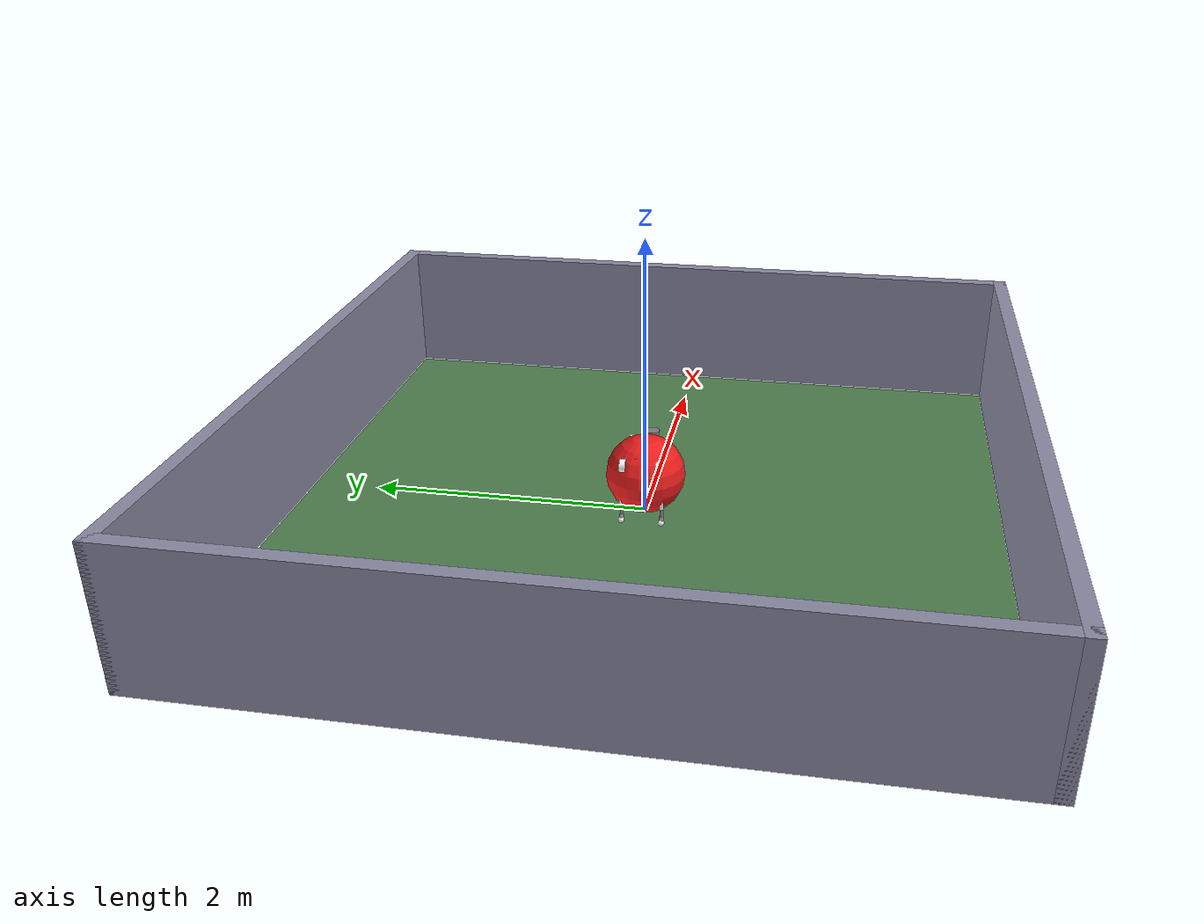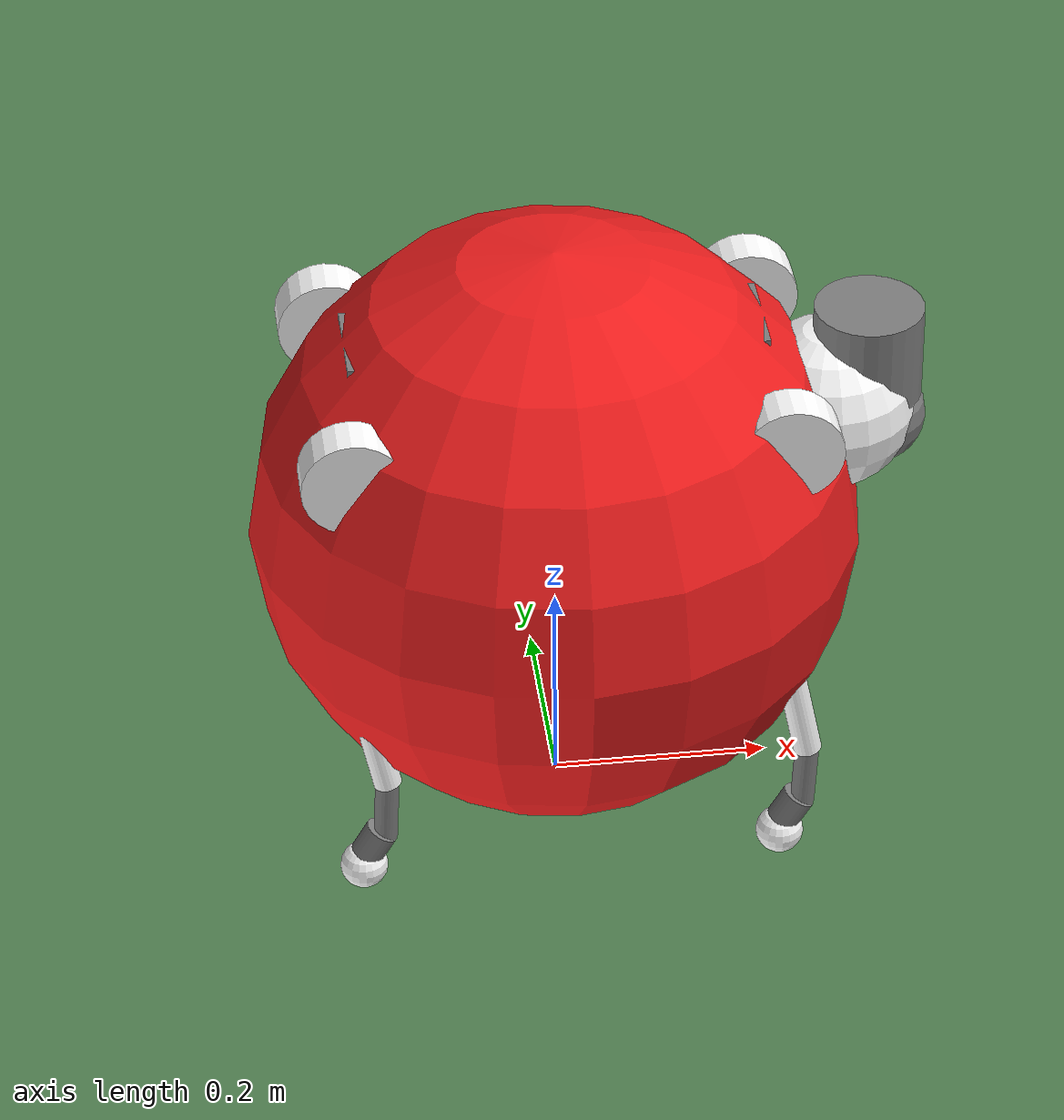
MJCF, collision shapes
<mujoco model="go2_arena">
  <include file="go2.xml"/>

  <statistic center="0 0 0.3" extent="4"/>

  <visual>
    <headlight diffuse="0.6 0.6 0.6" ambient="0.3 0.3 0.3" specular="0 0 0"/>
    <rgba haze="0.1 0.15 0.2 1"/>
    <global azimuth="120" elevation="-30"/>
  </visual>

  <asset>
    <texture type="2d" name="floor_tex" builtin="checker"
      rgb1="0.35 0.55 0.35" rgb2="0.28 0.45 0.28" width="256" height="256"/>
    <material name="floor_mat" texture="floor_tex" texrepeat="5 5" reflectance="0.1"/>
    <material name="wall_mat" rgba="0.55 0.55 0.65 1"/>
    <material name="oni_mat"  rgba="0.95 0.12 0.12 1"/>
  </asset>

  <worldbody>
    <light name="main_light" pos="0 0 5" dir="0 0 -1" directional="true"
      diffuse="0.8 0.8 0.8" specular="0.1 0.1 0.1"/>
    <light name="fill_light" pos="0 0 3" dir="0 1 -1" directional="true"
      diffuse="0.3 0.3 0.35" specular="0 0 0"/>

    <!-- 5m×5m フロア（±2.5m） -->
    <geom name="floor" type="plane" size="2.5 2.5 0.1" material="floor_mat"
      contype="1" conaffinity="1" friction="0.8 0.1 0.1"/>

    <!-- 壁（厚み 0.1m、高さ 1.0m） -->
    <!-- 北壁 y=+2.5 -->
    <geom name="wall_n" type="box" pos="0  2.55 0.5" size="2.6 0.05 0.5"
      material="wall_mat" contype="1" conaffinity="1"/>
    <!-- 南壁 y=-2.5 -->
    <geom name="wall_s" type="box" pos="0 -2.55 0.5" size="2.6 0.05 0.5"
      material="wall_mat" contype="1" conaffinity="1"/>
    <!-- 東壁 x=+2.5 -->
    <geom name="wall_e" type="box" pos=" 2.55 0 0.5" size="0.05 2.6 0.5"
      material="wall_mat" contype="1" conaffinity="1"/>
    <!-- 西壁 x=-2.5 -->
    <geom name="wall_w" type="box" pos="-2.55 0 0.5" size="0.05 2.6 0.5"
      material="wall_mat" contype="1" conaffinity="1"/>

    <!-- 俯瞰カメラ（2体が収まる高さ: 9m） -->
    <camera name="top_view" pos="0 0 9" euler="0 0 0" fovy="60"/>

    <!-- 斜めカメラ（確認用） -->
    <camera name="side_view" pos="6 -4 4" euler="55 0 45" fovy="50"/>

    <!-- 鬼（赤い球）: pos=(0,0,0.3) を原点に slide 関節で移動
         qpos[19]=oni_x, qpos[20]=oni_y で位置管理 -->
    <body name="oni" pos="0 0 0.3">
      <joint name="oni_x" type="slide" axis="1 0 0"
        limited="true" range="-2.4 2.4" damping="100" frictionloss="0"/>
      <joint name="oni_y" type="slide" axis="0 1 0"
        limited="true" range="-2.4 2.4" damping="100" frictionloss="0"/>
      <!-- 視覚的な球（衝突なし: contype=0） -->
      <geom name="oni_body" type="sphere" size="0.28" material="oni_mat"
        contype="0" conaffinity="0" mass="0.001"/>
      <!-- 鬼の方向インジケーター（目のような突起） -->
      <geom name="oni_eye" type="sphere" size="0.08" pos="0.25 0 0.1"
        rgba="1 1 1 1" contype="0" conaffinity="0" mass="0"/>
    </body>
  </worldbody>
</mujoco>

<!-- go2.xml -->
<mujoco model="go2_description">

  <compiler angle="radian" meshdir="assets"/>

  <statistic meansize="0.144785" extent="1.23314" center="0.025392 2.0634e-05 -0.245975"/>
  <default>
    <joint damping="0.001" armature="0.01" frictionloss="0.1"/>
    <default class="visual">
        <geom type="mesh" contype="0" conaffinity="0" group="2"/>
    </default>
  </default>

  <asset>
    <material name="metal" rgba=".9 .95 .95 1" />
    <material name="black" rgba="0 0 0 1" />
    <material name="white" rgba="1 1 1 1" />
    <material name="gray" rgba="0.671705 0.692426 0.774270 1" />

    <mesh file="base_0.obj" />
    <mesh file="base_1.obj" />
    <mesh file="base_2.obj" />
    <mesh file="base_3.obj" />
    <mesh file="base_4.obj" />
    <mesh file="hip_0.obj" />
    <mesh file="hip_1.obj" />
    <mesh file="thigh_0.obj" />
    <mesh file="thigh_1.obj" />
    <mesh file="thigh_mirror_0.obj" />
    <mesh file="thigh_mirror_1.obj" />
    <mesh file="calf_0.obj" />
    <mesh file="calf_1.obj" />
    <mesh file="calf_mirror_0.obj" />
    <mesh file="calf_mirror_1.obj" />
    <mesh file="foot.obj" />
  </asset>

  <worldbody>

    <body name="base" pos="0 0 0.445">
      <inertial pos="0.021112 0 -0.005366"
                mass="6.921"
                diaginertia="0.02448 0.098077 0.107" />
      <freejoint name="root"/>
      <geom mesh="base_0" material="black" class="visual" />
      <geom mesh="base_1" material="black" class="visual" />
      <geom mesh="base_2" material="black" class="visual" />
      <geom mesh="base_3" material="white" class="visual" />
      <geom mesh="base_4" material="gray" class="visual" />

      <geom name="base_box"      type="box"      size="0.1881 0.04675 0.057"/>
      <geom name="base_cyl1"     type="cylinder" size="0.05 0.045"   pos="0.285 0 0.01"/>
      <geom name="base_sphere1"  type="sphere"   size="0.047"        pos="0.293 0 -0.06"/>

      <body name="FL_hip" pos="0.1934 0.0465 0">
        <inertial pos="-0.0054 0.00194 -0.000105" quat="0.497014 0.499245 0.505462 0.498237" mass="0.678" diaginertia="0.00088403 0.000596003 0.000479967"/>
        <joint name="FL_hip_joint" pos="0 0 0" axis="1 0 0" range="-1.0472 1.0472" actuatorfrcrange="-23.7 23.7"/>
        <geom mesh="hip_0" material="metal" class="visual" />
        <geom mesh="hip_1" material="gray" class="visual" />
        <geom size="0.046 0.02" pos="0 0.08 0" quat="0.707107 0.707107 0 0" type="cylinder" rgba="1 1 1 1"/>

        <body name="FL_thigh" pos="0 0.0955 0">
        <inertial pos="-0.00374 -0.0223 -0.0327" quat="0.829533 0.0847635 -0.0200632 0.551623" mass="1.152" diaginertia="0.00594973 0.00584149 0.000878787"/>
        <joint name="FL_thigh_joint" pos="0 0 0" axis="0 1 0" range="-1.5708 3.4907" actuatorfrcrange="-23.7 23.7"/>
        <geom mesh="thigh_0" material="metal" class="visual" />
        <geom mesh="thigh_1" material="gray" class="visual" />
        <geom size="0.055 0.01225 0.017" pos="0 0 -0.1065" quat="0.707107 0 0.707107 0" type="box" rgba="1 1 1 1"/>
        <body name="FL_calf" pos="0 0 -0.213">
        <inertial pos="0.00629595 -0.000622121 -0.141417" quat="0.710672 0.00154099 -0.00450087 0.703508" mass="0.241352" diaginertia="0.0014901 0.00146356 5.31397e-05"/>
        <joint name="FL_calf_joint" pos="0 0 0" axis="0 1 0" range="-2.7227 -0.83776" actuatorfrcrange="-35.55 35.55"/>
        <geom mesh="calf_0" material="gray" class="visual" />
        <geom mesh="calf_1" material="black" class="visual" />
        <geom size="0.012 0.06" pos="0.008 0 -0.06" quat="0.994493 0 -0.104807 0" type="cylinder" rgba="1 1 1 1"/>
        <geom size="0.011 0.0325" pos="0.02 0 -0.148" quat="0.999688 0 0.0249974 0" type="cylinder"/>
        <geom size="0.0155 0.015" pos="0.00801333 0 -0.18745" quat="0.965093 0 0.261909 0" type="cylinder"/>
        <geom pos="0 0 -0.213" mesh="foot" class="visual" material="black" />
        <geom name="FL_foot" size="0.022" pos="-0.002 0 -0.213" rgba="1 1 1 1" priority="1" condim="6" friction="0.9 0.02 0.01"/>
        </body>
        </body>
      </body>
      <body name="FR_hip" pos="0.1934 -0.0465 0">
        <inertial pos="-0.0054 -0.00194 -0.000105" quat="0.498237 0.505462 0.499245 0.497014" mass="0.678" diaginertia="0.00088403 0.000596003 0.000479967"/>
        <joint name="FR_hip_joint" pos="0 0 0" axis="1 0 0" range="-1.0472 1.0472" actuatorfrcrange="-23.7 23.7"/>
        <geom mesh="hip_0" material="metal" class="visual" quat="4.63268e-05 1 0 0" />
        <geom mesh="hip_1" material="gray" class="visual" quat="4.63268e-05 1 0 0" />
        <geom size="0.046 0.02" pos="0 -0.08 0" quat="0.707107 0.707107 0 0" type="cylinder" rgba="1 1 1 1"/>
        <body name="FR_thigh" pos="0 -0.0955 0">
        <inertial pos="-0.00374 0.0223 -0.0327" quat="0.551623 -0.0200632 0.0847635 0.829533" mass="1.152" diaginertia="0.00594973 0.00584149 0.000878787"/>
        <joint name="FR_thigh_joint" pos="0 0 0" axis="0 1 0" range="-1.5708 3.4907" actuatorfrcrange="-23.7 23.7"/>
        <geom mesh="thigh_mirror_0" material="metal" class="visual" />
        <geom mesh="thigh_mirror_1" material="gray" class="visual" />
        <geom size="0.055 0.01225 0.017" pos="0 0 -0.1065" quat="0.707107 0 0.707107 0" type="box" rgba="1 1 1 1"/>
        <body name="FR_calf" pos="0 0 -0.213">
        <inertial pos="0.00629595 0.000622121 -0.141417" quat="0.703508 -0.00450087 0.00154099 0.710672" mass="0.241352" diaginertia="0.0014901 0.00146356 5.31397e-05"/>
        <joint name="FR_calf_joint" pos="0 0 0" axis="0 1 0" range="-2.7227 -0.83776" actuatorfrcrange="-35.55 35.55"/>
        <geom mesh="calf_mirror_0" material="gray" class="visual" />
        <geom mesh="calf_mirror_1" material="black" class="visual" />
        <geom size="0.013 0.06" pos="0.01 0 -0.06" quat="0.995004 0 -0.0998334 0" type="cylinder" rgba="1 1 1 1"/>
        <geom size="0.011 0.0325" pos="0.02 0 -0.148" quat="0.999688 0 0.0249974 0" type="cylinder"/>
        <geom size="0.0155 0.015" pos="0.00801333 0 -0.18745" quat="0.965093 0 0.261909 0" type="cylinder"/>
        <geom pos="0 0 -0.213" mesh="foot" class="visual" material="black" />
        <geom name="FR_foot" size="0.022" pos="-0.002 0 -0.213" rgba="1 1 1 1" priority="1" condim="6" friction="0.9 0.02 0.01"/>
        </body>
        </body>
      </body>
      <body name="RL_hip" pos="-0.1934 0.0465 0">
        <inertial pos="0.0054 0.00194 -0.000105" quat="0.505462 0.498237 0.497014 0.499245" mass="0.678" diaginertia="0.00088403 0.000596003 0.000479967"/>
        <joint name="RL_hip_joint" pos="0 0 0" axis="1 0 0" range="-1.0472 1.0472" actuatorfrcrange="-23.7 23.7"/>
        <geom mesh="hip_0" material="metal" class="visual" quat="4.63268e-05 0 1 0" />
        <geom mesh="hip_1" material="gray" class="visual" quat="4.63268e-05 0 1 0" />
        <geom size="0.046 0.02" pos="0 0.08 0" quat="0.707107 0.707107 0 0" type="cylinder" rgba="1 1 1 1"/>
        <body name="RL_thigh" pos="0 0.0955 0">
        <inertial pos="-0.00374 -0.0223 -0.0327" quat="0.829533 0.0847635 -0.0200632 0.551623" mass="1.152" diaginertia="0.00594973 0.00584149 0.000878787"/>
        <joint name="RL_thigh_joint" pos="0 0 0" axis="0 1 0" range="-0.5236 4.5379" actuatorfrcrange="-23.7 23.7"/>
        <geom mesh="thigh_0" material="metal" class="visual" />
        <geom mesh="thigh_1" material="gray" class="visual" />
        <geom size="0.055 0.01225 0.017" pos="0 0 -0.1065" quat="0.707107 0 0.707107 0" type="box" rgba="1 1 1 1"/>
        <body name="RL_calf" pos="0 0 -0.213">
        <inertial pos="0.00629595 -0.000622121 -0.141417" quat="0.710672 0.00154099 -0.00450087 0.703508" mass="0.241352" diaginertia="0.0014901 0.00146356 5.31397e-05"/>
        <joint name="RL_calf_joint" pos="0 0 0" axis="0 1 0" range="-2.7227 -0.83776" actuatorfrcrange="-35.55 35.55"/>
        <geom mesh="calf_0" material="gray" class="visual" />
        <geom mesh="calf_1" material="black" class="visual" />
        <geom size="0.013 0.06" pos="0.01 0 -0.06" quat="0.995004 0 -0.0998334 0" type="cylinder" rgba="1 1 1 1"/>
        <geom size="0.011 0.0325" pos="0.02 0 -0.148" quat="0.999688 0 0.0249974 0" type="cylinder"/>
        <geom size="0.0155 0.015" pos="0.00801333 0 -0.18745" quat="0.965093 0 0.261909 0" type="cylinder"/>
        <geom pos="0 0 -0.213" mesh="foot" class="visual" material="black" />
        <geom name="RL_foot" size="0.022" pos="-0.002 0 -0.213" rgba="1 1 1 1" priority="1" condim="6" friction="0.9 0.02 0.01"/>
        </body>
        </body>
      </body>

      <body name="RR_hip" pos="-0.1934 -0.0465 0">
        <inertial pos="0.0054 -0.00194 -0.000105" quat="0.499245 0.497014 0.498237 0.505462" mass="0.678" diaginertia="0.00088403 0.000596003 0.000479967"/>
        <joint name="RR_hip_joint" pos="0 0 0" axis="1 0 0" range="-1.0472 1.0472" actuatorfrcrange="-23.7 23.7"/>
        <geom mesh="hip_0" material="metal" class="visual"
          quat="2.14617e-09 4.63268e-05 4.63268e-05 -1" />
        <geom mesh="hip_1" material="gray" class="visual"
          quat="2.14617e-09 4.63268e-05 4.63268e-05 -1" />
        <geom size="0.046 0.02" pos="0 -0.08 0" quat="0.707107 0.707107 0 0" type="cylinder" rgba="1 1 1 1"/>
        <body name="RR_thigh" pos="0 -0.0955 0">
        <inertial pos="-0.00374 0.0223 -0.0327" quat="0.551623 -0.0200632 0.0847635 0.829533" mass="1.152" diaginertia="0.00594973 0.00584149 0.000878787"/>
        <joint name="RR_thigh_joint" pos="0 0 0" axis="0 1 0" range="-0.5236 4.5379" actuatorfrcrange="-23.7 23.7"/>
        <geom mesh="thigh_mirror_0" material="metal" class="visual" />
        <geom mesh="thigh_mirror_1" material="gray" class="visual" />
        <geom size="0.055 0.01225 0.017" pos="0 0 -0.1065" quat="0.707107 0 0.707107 0" type="box" rgba="1 1 1 1"/>
        <body name="RR_calf" pos="0 0 -0.213">
        <inertial pos="0.00629595 0.000622121 -0.141417" quat="0.703508 -0.00450087 0.00154099 0.710672" mass="0.241352" diaginertia="0.0014901 0.00146356 5.31397e-05"/>
        <joint name="RR_calf_joint" pos="0 0 0" axis="0 1 0" range="-2.7227 -0.83776" actuatorfrcrange="-35.55 35.55"/>
        <geom mesh="calf_mirror_0" material="gray" class="visual" />
        <geom mesh="calf_mirror_1" material="black" class="visual" />
        <geom size="0.013 0.06" pos="0.01 0 -0.06" quat="0.995004 0 -0.0998334 0" type="cylinder" rgba="1 1 1 1"/>
        <geom size="0.011 0.0325" pos="0.02 0 -0.148" quat="0.999688 0 0.0249974 0" type="cylinder"/>
        <geom size="0.0155 0.015" pos="0.00801333 0 -0.18745" quat="0.965093 0 0.261909 0" type="cylinder"/>
        <geom pos="0 0 -0.213" mesh="foot" class="visual" material="black" />
        <geom name="RR_foot" size="0.022" pos="-0.002 0 -0.213" rgba="1 1 1 1" priority="1" condim="6" friction="0.9 0.02 0.01"/>
        </body>
        </body>
      </body>

    </body>
  </worldbody>

  <actuator>
    <motor name="FL_hip"   joint="FL_hip_joint"/>
    <motor name="FL_thigh" joint="FL_thigh_joint"/>
    <motor name="FL_calf"  joint="FL_calf_joint"/>
    <motor name="FR_hip"   joint="FR_hip_joint"/>
    <motor name="FR_thigh" joint="FR_thigh_joint"/>
    <motor name="FR_calf"  joint="FR_calf_joint"/>
    <motor name="RL_hip"   joint="RL_hip_joint"/>
    <motor name="RL_thigh" joint="RL_thigh_joint"/>
    <motor name="RL_calf"  joint="RL_calf_joint"/>
    <motor name="RR_hip"   joint="RR_hip_joint"/>
    <motor name="RR_thigh" joint="RR_thigh_joint"/>
    <motor name="RR_calf"  joint="RR_calf_joint"/>
  </actuator>

</mujoco>
